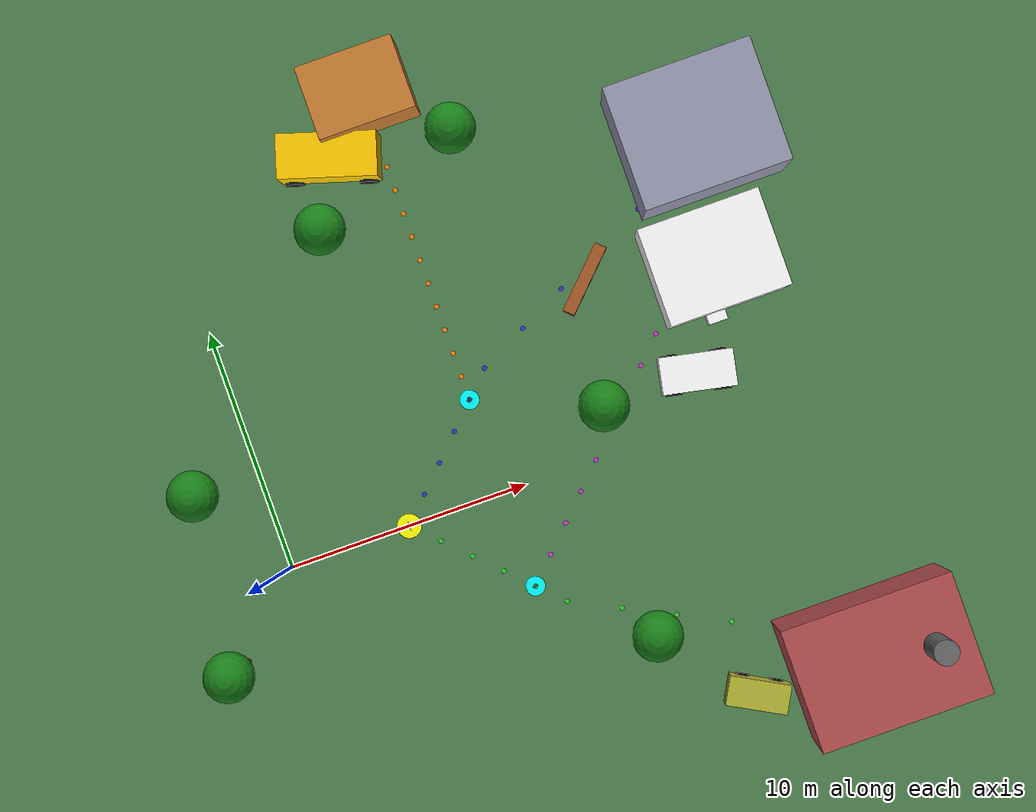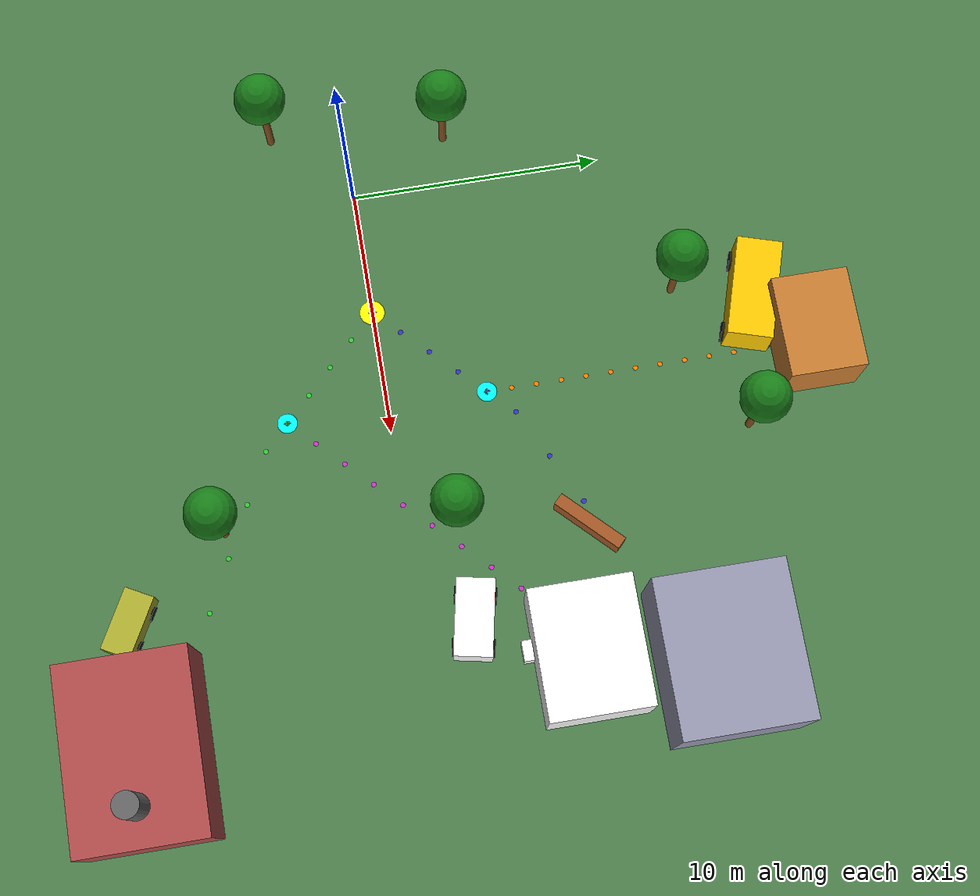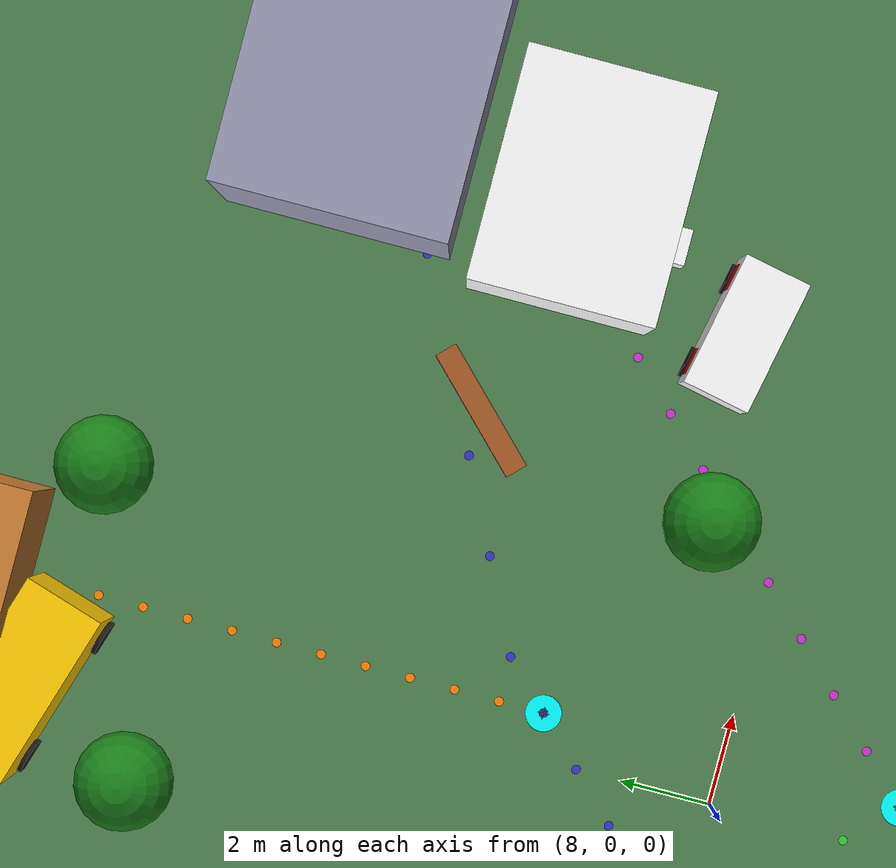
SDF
<sdf version="1.7">
 <world name="ethical_dilemma_world">
  <physics type="ode">
   <max_step_size>0.001</max_step_size>
   <real_time_factor>1.0</real_time_factor>
   <real_time_update_rate>1000</real_time_update_rate>
  </physics>
  <light type="directional" name="sun">
   <pose>0 0 10 0 0 0</pose>
   <diffuse>0.8 0.8 0.8 1</diffuse>
   <specular>0.2 0.2 0.2 1</specular>
   <direction>-0.5 0.1 -0.9</direction>
  </light>
  <light type="directional" name="ambient">
   <cast_shadows>false</cast_shadows>
   <pose>0 0 10 0 0 0</pose>
   <diffuse>0.3 0.3 0.3 1</diffuse>
   <specular>0.1 0.1 0.1 1</specular>
   <direction>0 0 -1</direction>
  </light>
  <scene><ambient>0.4 0.4 0.4 1</ambient><background>0.7 0.8 0.9 1</background><shadows>true</shadows></scene>
  <model name="ground_plane">
   <static>true</static>
   <link name="link">
    <collision name="collision">
     <geometry><plane><normal>0 0 1</normal><size>150 150</size></plane></geometry>
     <surface><friction><ode><mu>100</mu><mu2>50</mu2></ode></friction></surface>
    </collision>
    <visual name="visual">
     <geometry><plane><normal>0 0 1</normal><size>150 150</size></plane></geometry>
     <material>
      <ambient>0.3 0.5 0.3 1</ambient>
      <diffuse>0.3 0.5 0.3 1</diffuse>
      <specular>0 0 0 1</specular>
      <emissive>0 0 0 1</emissive>
     </material>
    </visual>
   </link>
  </model>
  <model name="path_marker_start">
   <static>true</static>
   <link name="link">
    <visual name="visual">
     <geometry><cylinder><radius>0.1</radius><length>0.001</length></cylinder></geometry>
     <material>
      <ambient>0.9 0.9 0.9 1</ambient>
      <diffuse>0.9 0.9 0.9 1</diffuse>
      <emissive>0.1 0.1 0.1 1</emissive>
     </material>
    </visual>
   </link>
   <pose>0 0 0.001 0 0 0</pose>
  </model>
  <model name="path_marker_1">
   <static>true</static>
   <link name="link">
    <visual name="visual">
     <geometry><cylinder><radius>0.1</radius><length>0.001</length></cylinder></geometry>
     <material>
      <ambient>0.9 0.9 0.9 1</ambient>
      <diffuse>0.9 0.9 0.9 1</diffuse>
      <emissive>0.1 0.1 0.1 1</emissive>
     </material>
    </visual>
   </link>
   <pose>1 0 0.001 0 0 0</pose>
  </model>
  <model name="path_marker_2">
   <static>true</static>
   <link name="link">
    <visual name="visual">
     <geometry><cylinder><radius>0.1</radius><length>0.001</length></cylinder></geometry>
     <material>
      <ambient>0.9 0.9 0.9 1</ambient>
      <diffuse>0.9 0.9 0.9 1</diffuse>
      <emissive>0.1 0.1 0.1 1</emissive>
     </material>
    </visual>
   </link>
   <pose>2 0 0.001 0 0 0</pose>
  </model>
  <model name="path_marker_3">
   <static>true</static>
   <link name="link">
    <visual name="visual">
     <geometry><cylinder><radius>0.1</radius><length>0.001</length></cylinder></geometry>
     <material>
      <ambient>0.9 0.9 0.9 1</ambient>
      <diffuse>0.9 0.9 0.9 1</diffuse>
      <emissive>0.1 0.1 0.1 1</emissive>
     </material>
    </visual>
   </link>
   <pose>3 0 0.001 0 0 0</pose>
  </model>
  <model name="path_marker_4">
   <static>true</static>
   <link name="link">
    <visual name="visual">
     <geometry><cylinder><radius>0.1</radius><length>0.001</length></cylinder></geometry>
     <material>
      <ambient>0.9 0.9 0.9 1</ambient>
      <diffuse>0.9 0.9 0.9 1</diffuse>
      <emissive>0.1 0.1 0.1 1</emissive>
     </material>
    </visual>
   </link>
   <pose>4 0 0.001 0 0 0</pose>
  </model>
  <model name="decision_point">
   <static>true</static>
   <link name="link">
    <collision name="collision">
     <geometry><cylinder><radius>0.5</radius><length>0.001</length></cylinder></geometry>
    </collision>
    <visual name="visual">
     <geometry><cylinder><radius>0.5</radius><length>0.001</length></cylinder></geometry>
     <material>
      <ambient>1.0 1.0 0.0 1</ambient>
      <diffuse>1.0 1.0 0.0 1</diffuse>
      <specular>0.1 0.1 0.1 1</specular>
      <emissive>0.3 0.3 0 1</emissive>
     </material>
    </visual>
    <visual name="symbol">
     <pose>0 0 0.0015 0 0 0</pose>
     <geometry><box><size>0.4 0.025 0.001</size></box></geometry>
     <material><ambient>0 0 0 1</ambient><diffuse>0 0 0 1</diffuse></material>
    </visual>
    <visual name="symbol_2">
     <pose>0 0 0.0015 0 0 1.5708</pose>
     <geometry><box><size>0.4 0.025 0.001</size></box></geometry>
     <material><ambient>0 0 0 1</ambient><diffuse>0 0 0 1</diffuse></material>
    </visual>
   </link>
   <pose>5.0 0 0.001 0 0 0</pose>
  </model>
  <model name="path_area1_marker_1">
   <static>true</static>
   <link name="link">
    <visual name="visual">
     <geometry><cylinder><radius>0.1</radius><length>0.001</length></cylinder></geometry>
     <material>
      <ambient>0.2 0.2 0.8 1</ambient>
      <diffuse>0.2 0.2 0.8 1</diffuse>
      <emissive>0.05 0.05 0.2 1</emissive>
     </material>
    </visual>
   </link>
   <pose>6.0 1.0 0.001 0 0 0</pose>
  </model>
  <model name="path_area1_marker_2">
   <static>true</static>
   <link name="link">
    <visual name="visual">
     <geometry><cylinder><radius>0.1</radius><length>0.001</length></cylinder></geometry>
     <material>
      <ambient>0.2 0.2 0.8 1</ambient>
      <diffuse>0.2 0.2 0.8 1</diffuse>
      <emissive>0.05 0.05 0.2 1</emissive>
     </material>
    </visual>
   </link>
   <pose>7.0 2.0 0.001 0 0 0</pose>
  </model>
  <model name="path_area1_marker_3">
   <static>true</static>
   <link name="link">
    <visual name="visual">
     <geometry><cylinder><radius>0.1</radius><length>0.001</length></cylinder></geometry>
     <material>
      <ambient>0.2 0.2 0.8 1</ambient>
      <diffuse>0.2 0.2 0.8 1</diffuse>
      <emissive>0.05 0.05 0.2 1</emissive>
     </material>
    </visual>
   </link>
   <pose>8.0 3.0 0.001 0 0 0</pose>
  </model>
  <model name="path_area1_marker_4">
   <static>true</static>
   <link name="link">
    <visual name="visual">
     <geometry><cylinder><radius>0.1</radius><length>0.001</length></cylinder></geometry>
     <material>
      <ambient>0.2 0.2 0.8 1</ambient>
      <diffuse>0.2 0.2 0.8 1</diffuse>
      <emissive>0.05 0.05 0.2 1</emissive>
     </material>
    </visual>
   </link>
   <pose>9.0 4.0 0.001 0 0 0</pose>
  </model>
  <model name="path_area1_marker_5">
   <static>true</static>
   <link name="link">
    <visual name="visual">
     <geometry><cylinder><radius>0.1</radius><length>0.001</length></cylinder></geometry>
     <material>
      <ambient>0.2 0.2 0.8 1</ambient>
      <diffuse>0.2 0.2 0.8 1</diffuse>
      <emissive>0.05 0.05 0.2 1</emissive>
     </material>
    </visual>
   </link>
   <pose>10.0 5.0 0.001 0 0 0</pose>
  </model>
  <model name="path_area1_marker_6">
   <static>true</static>
   <link name="link">
    <visual name="visual">
     <geometry><cylinder><radius>0.1</radius><length>0.001</length></cylinder></geometry>
     <material>
      <ambient>0.2 0.2 0.8 1</ambient>
      <diffuse>0.2 0.2 0.8 1</diffuse>
      <emissive>0.05 0.05 0.2 1</emissive>
     </material>
    </visual>
   </link>
   <pose>12.0 6.0 0.001 0 0 0</pose>
  </model>
  <model name="path_area1_marker_7">
   <static>true</static>
   <link name="link">
    <visual name="visual">
     <geometry><cylinder><radius>0.1</radius><length>0.001</length></cylinder></geometry>
     <material>
      <ambient>0.2 0.2 0.8 1</ambient>
      <diffuse>0.2 0.2 0.8 1</diffuse>
      <emissive>0.05 0.05 0.2 1</emissive>
     </material>
    </visual>
   </link>
   <pose>14.0 7.0 0.001 0 0 0</pose>
  </model>
  <model name="path_area1_marker_8">
   <static>true</static>
   <link name="link">
    <visual name="visual">
     <geometry><cylinder><radius>0.1</radius><length>0.001</length></cylinder></geometry>
     <material>
      <ambient>0.2 0.2 0.8 1</ambient>
      <diffuse>0.2 0.2 0.8 1</diffuse>
      <emissive>0.05 0.05 0.2 1</emissive>
     </material>
    </visual>
   </link>
   <pose>16.0 8.0 0.001 0 0 0</pose>
  </model>
  <model name="path_area1_marker_9">
   <static>true</static>
   <link name="link">
    <visual name="visual">
     <geometry><cylinder><radius>0.1</radius><length>0.001</length></cylinder></geometry>
     <material>
      <ambient>0.2 0.2 0.8 1</ambient>
      <diffuse>0.2 0.2 0.8 1</diffuse>
      <emissive>0.05 0.05 0.2 1</emissive>
     </material>
    </visual>
   </link>
   <pose>18.0 9.0 0.001 0 0 0</pose>
  </model>
  <model name="path_area2_marker_1">
   <static>true</static>
   <link name="link">
    <visual name="visual">
     <geometry><cylinder><radius>0.1</radius><length>0.001</length></cylinder></geometry>
     <material>
      <ambient>0.2 0.8 0.2 1</ambient>
      <diffuse>0.2 0.8 0.2 1</diffuse>
      <emissive>0.05 0.2 0.05 1</emissive>
     </material>
    </visual>
   </link>
   <pose>6.0 -1.0 0.001 0 0 0</pose>
  </model>
  <model name="path_area2_marker_2">
   <static>true</static>
   <link name="link">
    <visual name="visual">
     <geometry><cylinder><radius>0.1</radius><length>0.001</length></cylinder></geometry>
     <material>
      <ambient>0.2 0.8 0.2 1</ambient>
      <diffuse>0.2 0.8 0.2 1</diffuse>
      <emissive>0.05 0.2 0.05 1</emissive>
     </material>
    </visual>
   </link>
   <pose>7.0 -2.0 0.001 0 0 0</pose>
  </model>
  <model name="path_area2_marker_3">
   <static>true</static>
   <link name="link">
    <visual name="visual">
     <geometry><cylinder><radius>0.1</radius><length>0.001</length></cylinder></geometry>
     <material>
      <ambient>0.2 0.8 0.2 1</ambient>
      <diffuse>0.2 0.8 0.2 1</diffuse>
      <emissive>0.05 0.2 0.05 1</emissive>
     </material>
    </visual>
   </link>
   <pose>8.0 -3.0 0.001 0 0 0</pose>
  </model>
  <model name="path_area2_marker_4">
   <static>true</static>
   <link name="link">
    <visual name="visual">
     <geometry><cylinder><radius>0.1</radius><length>0.001</length></cylinder></geometry>
     <material>
      <ambient>0.2 0.8 0.2 1</ambient>
      <diffuse>0.2 0.8 0.2 1</diffuse>
      <emissive>0.05 0.2 0.05 1</emissive>
     </material>
    </visual>
   </link>
   <pose>9.0 -4.0 0.001 0 0 0</pose>
  </model>
  <model name="path_area2_marker_5">
   <static>true</static>
   <link name="link">
    <visual name="visual">
     <geometry><cylinder><radius>0.1</radius><length>0.001</length></cylinder></geometry>
     <material>
      <ambient>0.2 0.8 0.2 1</ambient>
      <diffuse>0.2 0.8 0.2 1</diffuse>
      <emissive>0.05 0.2 0.05 1</emissive>
     </material>
    </visual>
   </link>
   <pose>10.0 -5.0 0.001 0 0 0</pose>
  </model>
  <model name="path_area2_marker_6">
   <static>true</static>
   <link name="link">
    <visual name="visual">
     <geometry><cylinder><radius>0.1</radius><length>0.001</length></cylinder></geometry>
     <material>
      <ambient>0.2 0.8 0.2 1</ambient>
      <diffuse>0.2 0.8 0.2 1</diffuse>
      <emissive>0.05 0.2 0.05 1</emissive>
     </material>
    </visual>
   </link>
   <pose>12.0 -6.0 0.001 0 0 0</pose>
  </model>
  <model name="path_area2_marker_7">
   <static>true</static>
   <link name="link">
    <visual name="visual">
     <geometry><cylinder><radius>0.1</radius><length>0.001</length></cylinder></geometry>
     <material>
      <ambient>0.2 0.8 0.2 1</ambient>
      <diffuse>0.2 0.8 0.2 1</diffuse>
      <emissive>0.05 0.2 0.05 1</emissive>
     </material>
    </visual>
   </link>
   <pose>14.0 -7.0 0.001 0 0 0</pose>
  </model>
  <model name="path_area2_marker_8">
   <static>true</static>
   <link name="link">
    <visual name="visual">
     <geometry><cylinder><radius>0.1</radius><length>0.001</length></cylinder></geometry>
     <material>
      <ambient>0.2 0.8 0.2 1</ambient>
      <diffuse>0.2 0.8 0.2 1</diffuse>
      <emissive>0.05 0.2 0.05 1</emissive>
     </material>
    </visual>
   </link>
   <pose>16.0 -8.0 0.001 0 0 0</pose>
  </model>
  <model name="path_area2_marker_9">
   <static>true</static>
   <link name="link">
    <visual name="visual">
     <geometry><cylinder><radius>0.1</radius><length>0.001</length></cylinder></geometry>
     <material>
      <ambient>0.2 0.8 0.2 1</ambient>
      <diffuse>0.2 0.8 0.2 1</diffuse>
      <emissive>0.05 0.2 0.05 1</emissive>
     </material>
    </visual>
   </link>
   <pose>18.0 -9.0 0.001 0 0 0</pose>
  </model>
  <model name="secondary_decision_point_area1">
   <static>true</static>
   <link name="link">
    <collision name="collision">
     <geometry><cylinder><radius>0.4</radius><length>0.001</length></cylinder></geometry>
    </collision>
    <visual name="visual">
     <geometry><cylinder><radius>0.4</radius><length>0.001</length></cylinder></geometry>
     <material>
      <ambient>0.0 1.0 1.0 1</ambient>
      <diffuse>0.0 1.0 1.0 1</diffuse>
      <specular>0.1 0.1 0.1 1</specular>
      <emissive>0.0 0.3 0.3 1</emissive>
     </material>
    </visual>
    <visual name="symbol">
     <pose>0 0 0.0015 0 0 0</pose>
     <geometry><box><size>0.25 0.025 0.001</size></box></geometry>
     <material><ambient>0 0 0 1</ambient><diffuse>0 0 0 1</diffuse></material>
    </visual>
    <visual name="symbol_2">
     <pose>0 0 0.0015 0 0 1.5708</pose>
     <geometry><box><size>0.25 0.025 0.001</size></box></geometry>
     <material><ambient>0 0 0 1</ambient><diffuse>0 0 0 1</diffuse></material>
    </visual>
   </link>
   <pose>9.0 4.0 0.001 0 0 0</pose>
  </model>
  <model name="secondary_decision_point_area2">
   <static>true</static>
   <link name="link">
    <collision name="collision">
     <geometry><cylinder><radius>0.4</radius><length>0.001</length></cylinder></geometry>
    </collision>
    <visual name="visual">
     <geometry><cylinder><radius>0.4</radius><length>0.001</length></cylinder></geometry>
     <material>
      <ambient>0.0 1.0 1.0 1</ambient>
      <diffuse>0.0 1.0 1.0 1</diffuse>
      <specular>0.1 0.1 0.1 1</specular>
      <emissive>0.0 0.3 0.3 1</emissive>
     </material>
    </visual>
    <visual name="symbol">
     <pose>0 0 0.0015 0 0 0</pose>
     <geometry><box><size>0.25 0.025 0.001</size></box></geometry>
     <material><ambient>0 0 0 1</ambient><diffuse>0 0 0 1</diffuse></material>
    </visual>
    <visual name="symbol_2">
     <pose>0 0 0.0015 0 0 1.5708</pose>
     <geometry><box><size>0.25 0.025 0.001</size></box></geometry>
     <material><ambient>0 0 0 1</ambient><diffuse>0 0 0 1</diffuse></material>
    </visual>
   </link>
   <pose>9.0 -4.0 0.001 0 0 0</pose>
  </model>
  <model name="path_area3_marker_1">
   <static>true</static>
   <link name="link">
    <visual name="visual">
     <geometry><cylinder><radius>0.1</radius><length>0.001</length></cylinder></geometry>
     <material>
      <ambient>0.8 0.2 0.8 1</ambient>
      <diffuse>0.8 0.2 0.8 1</diffuse>
      <emissive>0.2 0.05 0.2 1</emissive>
     </material>
    </visual>
   </link>
   <pose>10.0 -3.0 0.001 0 0 0</pose>
  </model>
  <model name="path_area3_marker_2">
   <static>true</static>
   <link name="link">
    <visual name="visual">
     <geometry><cylinder><radius>0.1</radius><length>0.001</length></cylinder></geometry>
     <material>
      <ambient>0.8 0.2 0.8 1</ambient>
      <diffuse>0.8 0.2 0.8 1</diffuse>
      <emissive>0.2 0.05 0.2 1</emissive>
     </material>
    </visual>
   </link>
   <pose>11.0 -2.0 0.001 0 0 0</pose>
  </model>
  <model name="path_area3_marker_3">
   <static>true</static>
   <link name="link">
    <visual name="visual">
     <geometry><cylinder><radius>0.1</radius><length>0.001</length></cylinder></geometry>
     <material>
      <ambient>0.8 0.2 0.8 1</ambient>
      <diffuse>0.8 0.2 0.8 1</diffuse>
      <emissive>0.2 0.05 0.2 1</emissive>
     </material>
    </visual>
   </link>
   <pose>12.0 -1.0 0.001 0 0 0</pose>
  </model>
  <model name="path_area3_marker_4">
   <static>true</static>
   <link name="link">
    <visual name="visual">
     <geometry><cylinder><radius>0.1</radius><length>0.001</length></cylinder></geometry>
     <material>
      <ambient>0.8 0.2 0.8 1</ambient>
      <diffuse>0.8 0.2 0.8 1</diffuse>
      <emissive>0.2 0.05 0.2 1</emissive>
     </material>
    </visual>
   </link>
   <pose>13.0 0.0 0.001 0 0 0</pose>
  </model>
  <model name="path_area3_marker_5">
   <static>true</static>
   <link name="link">
    <visual name="visual">
     <geometry><cylinder><radius>0.1</radius><length>0.001</length></cylinder></geometry>
     <material>
      <ambient>0.8 0.2 0.8 1</ambient>
      <diffuse>0.8 0.2 0.8 1</diffuse>
      <emissive>0.2 0.05 0.2 1</emissive>
     </material>
    </visual>
   </link>
   <pose>14.0 1.0 0.001 0 0 0</pose>
  </model>
  <model name="path_area3_marker_6">
   <static>true</static>
   <link name="link">
    <visual name="visual">
     <geometry><cylinder><radius>0.1</radius><length>0.001</length></cylinder></geometry>
     <material>
      <ambient>0.8 0.2 0.8 1</ambient>
      <diffuse>0.8 0.2 0.8 1</diffuse>
      <emissive>0.2 0.05 0.2 1</emissive>
     </material>
    </visual>
   </link>
   <pose>15.0 2.0 0.001 0 0 0</pose>
  </model>
  <model name="path_area3_marker_7">
   <static>true</static>
   <link name="link">
    <visual name="visual">
     <geometry><cylinder><radius>0.1</radius><length>0.001</length></cylinder></geometry>
     <material>
      <ambient>0.8 0.2 0.8 1</ambient>
      <diffuse>0.8 0.2 0.8 1</diffuse>
      <emissive>0.2 0.05 0.2 1</emissive>
     </material>
    </visual>
   </link>
   <pose>16.0 3.0 0.001 0 0 0</pose>
  </model>
  <model name="path_area3_marker_8">
   <static>true</static>
   <link name="link">
    <visual name="visual">
     <geometry><cylinder><radius>0.1</radius><length>0.001</length></cylinder></geometry>
     <material>
      <ambient>0.8 0.2 0.8 1</ambient>
      <diffuse>0.8 0.2 0.8 1</diffuse>
      <emissive>0.2 0.05 0.2 1</emissive>
     </material>
    </visual>
   </link>
   <pose>17.0 4.0 0.001 0 0 0</pose>
  </model>
  <model name="path_area4_marker_1">
   <static>true</static>
   <link name="link">
    <visual name="visual">
     <geometry><cylinder><radius>0.1</radius><length>0.001</length></cylinder></geometry>
     <material>
      <ambient>1.0 0.5 0.0 1</ambient>
      <diffuse>1.0 0.5 0.0 1</diffuse>
      <emissive>0.2 0.1 0.0 1</emissive>
     </material>
    </visual>
   </link>
   <pose>9.0 5.0 0.001 0 0 0</pose>
  </model>
  <model name="path_area4_marker_2">
   <static>true</static>
   <link name="link">
    <visual name="visual">
     <geometry><cylinder><radius>0.1</radius><length>0.001</length></cylinder></geometry>
     <material>
      <ambient>1.0 0.5 0.0 1</ambient>
      <diffuse>1.0 0.5 0.0 1</diffuse>
      <emissive>0.2 0.1 0.0 1</emissive>
     </material>
    </visual>
   </link>
   <pose>9.0 6.0 0.001 0 0 0</pose>
  </model>
  <model name="path_area4_marker_3">
   <static>true</static>
   <link name="link">
    <visual name="visual">
     <geometry><cylinder><radius>0.1</radius><length>0.001</length></cylinder></geometry>
     <material>
      <ambient>1.0 0.5 0.0 1</ambient>
      <diffuse>1.0 0.5 0.0 1</diffuse>
      <emissive>0.2 0.1 0.0 1</emissive>
     </material>
    </visual>
   </link>
   <pose>9.0 7.0 0.001 0 0 0</pose>
  </model>
  <model name="path_area4_marker_4">
   <static>true</static>
   <link name="link">
    <visual name="visual">
     <geometry><cylinder><radius>0.1</radius><length>0.001</length></cylinder></geometry>
     <material>
      <ambient>1.0 0.5 0.0 1</ambient>
      <diffuse>1.0 0.5 0.0 1</diffuse>
      <emissive>0.2 0.1 0.0 1</emissive>
     </material>
    </visual>
   </link>
   <pose>9.0 8.0 0.001 0 0 0</pose>
  </model>
  <model name="path_area4_marker_5">
   <static>true</static>
   <link name="link">
    <visual name="visual">
     <geometry><cylinder><radius>0.1</radius><length>0.001</length></cylinder></geometry>
     <material>
      <ambient>1.0 0.5 0.0 1</ambient>
      <diffuse>1.0 0.5 0.0 1</diffuse>
      <emissive>0.2 0.1 0.0 1</emissive>
     </material>
    </visual>
   </link>
   <pose>9.0 9.0 0.001 0 0 0</pose>
  </model>
  <model name="path_area4_marker_6">
   <static>true</static>
   <link name="link">
    <visual name="visual">
     <geometry><cylinder><radius>0.1</radius><length>0.001</length></cylinder></geometry>
     <material>
      <ambient>1.0 0.5 0.0 1</ambient>
      <diffuse>1.0 0.5 0.0 1</diffuse>
      <emissive>0.2 0.1 0.0 1</emissive>
     </material>
    </visual>
   </link>
   <pose>9.0 10.0 0.001 0 0 0</pose>
  </model>
  <model name="path_area4_marker_7">
   <static>true</static>
   <link name="link">
    <visual name="visual">
     <geometry><cylinder><radius>0.1</radius><length>0.001</length></cylinder></geometry>
     <material>
      <ambient>1.0 0.5 0.0 1</ambient>
      <diffuse>1.0 0.5 0.0 1</diffuse>
      <emissive>0.2 0.1 0.0 1</emissive>
     </material>
    </visual>
   </link>
   <pose>9.0 11.0 0.001 0 0 0</pose>
  </model>
  <model name="path_area4_marker_8">
   <static>true</static>
   <link name="link">
    <visual name="visual">
     <geometry><cylinder><radius>0.1</radius><length>0.001</length></cylinder></geometry>
     <material>
      <ambient>1.0 0.5 0.0 1</ambient>
      <diffuse>1.0 0.5 0.0 1</diffuse>
      <emissive>0.2 0.1 0.0 1</emissive>
     </material>
    </visual>
   </link>
   <pose>9.0 12.0 0.001 0 0 0</pose>
  </model>
  <model name="path_area4_marker_9">
   <static>true</static>
   <link name="link">
    <visual name="visual">
     <geometry><cylinder><radius>0.1</radius><length>0.001</length></cylinder></geometry>
     <material>
      <ambient>1.0 0.5 0.0 1</ambient>
      <diffuse>1.0 0.5 0.0 1</diffuse>
      <emissive>0.2 0.1 0.0 1</emissive>
     </material>
    </visual>
   </link>
   <pose>9.0 13.0 0.001 0 0 0</pose>
  </model>
  <model name="path_area4_marker_10">
   <static>true</static>
   <link name="link">
    <visual name="visual">
     <geometry><cylinder><radius>0.1</radius><length>0.001</length></cylinder></geometry>
     <material>
      <ambient>1.0 0.5 0.0 1</ambient>
      <diffuse>1.0 0.5 0.0 1</diffuse>
      <emissive>0.2 0.1 0.0 1</emissive>
     </material>
    </visual>
   </link>
   <pose>9.0 14.0 0.001 0 0 0</pose>
  </model>
  <model name="medical_equipment">
   <static>true</static>
   <link name="link">
    <collision name="collision"><geometry><box><size>0.8 0.8 0.8</size></box></geometry></collision>
    <visual name="visual">
     <geometry><box><size>0.8 0.8 0.8</size></box></geometry>
     <material><ambient>1 1 1 1</ambient><diffuse>1 1 1 1</diffuse></material>
    </visual>
    <visual name="cross">
     <pose>0 0.401 0 0 0 0</pose>
     <geometry><box><size>0.6 0.01 0.6</size></box></geometry>
     <material><ambient>1 0 0 1</ambient><diffuse>1 0 0 1</diffuse></material>
    </visual>
   </link>
   <pose>19.5 4.0 0.4 0 0 0</pose>
  </model>
  <model name="area1_obstacle">
   <static>true</static>
   <link name="link">
    <collision name="collision"><geometry><box><size>3.0 0.5 1.0</size></box></geometry></collision>
    <visual name="visual">
     <geometry><box><size>3.0 0.5 1.0</size></box></geometry>
     <material>
      <ambient>0.65 0.35 0.15 1</ambient>
      <diffuse>0.65 0.35 0.15 1</diffuse>
      <specular>0.1 0.1 0.1 1</specular>
     </material>
    </visual>
   </link>
   <pose>15.0 7.0 0.5 0 0 0.785398</pose>
  </model>
  <model name="school_building">
   <static>true</static>
   <link name="link">
    <collision name="collision"><geometry><box><size>4.0 3.0 2.5</size></box></geometry></collision>
    <visual name="visual">
     <geometry><box><size>4.0 3.0 2.5</size></box></geometry>
     <material><ambient>0.8 0.5 0.2 1</ambient><diffuse>0.8 0.5 0.2 1</diffuse></material>
    </visual>
    <visual name="sign">
     <pose>0 1.501 0.5 0 0 0</pose>
     <geometry><box><size>1.5 0.01 0.5</size></box></geometry>
     <material><ambient>0.2 0.6 1.0 1</ambient><diffuse>0.2 0.6 1.0 1</diffuse></material>
    </visual>
   </link>
   <pose>9.0 17.0 1.25 0 0 0</pose>
  </model>
  <model name="hospital_building">
   <static>true</static>
   <link name="link">
    <collision name="collision"><geometry><box><size>5.0 4.0 3.0</size></box></geometry></collision>
    <visual name="visual">
     <geometry><box><size>5.0 4.0 3.0</size></box></geometry>
     <material><ambient>1.0 1.0 1.0 1</ambient><diffuse>1.0 1.0 1.0 1</diffuse></material>
    </visual>
    <visual name="cross">
     <pose>0 2.001 0.5 0 0 0</pose>
     <geometry><box><size>1.5 0.01 1.5</size></box></geometry>
     <material><ambient>1.0 0.0 0.0 1</ambient><diffuse>1.0 0.0 0.0 1</diffuse></material>
    </visual>
   </link>
   <pose>20.0 6.0 1.5 0 0 0</pose>
  </model>
  <model name="residential_building">
   <static>true</static>
   <link name="link">
    <collision name="collision"><geometry><box><size>6.0 5.0 4.0</size></box></geometry></collision>
    <visual name="visual">
     <geometry><box><size>6.0 5.0 4.0</size></box></geometry>
     <material><ambient>0.6 0.6 0.7 1</ambient><diffuse>0.6 0.6 0.7 1</diffuse></material>
    </visual>
    <visual name="windows">
     <pose>0 2.501 0 0 0 0</pose>
     <geometry><box><size>5.0 0.01 3.0</size></box></geometry>
     <material><ambient>0.3 0.3 0.8 0.8</ambient><diffuse>0.3 0.3 0.8 0.8</diffuse></material>
    </visual>
   </link>
   <pose>21.0 11.0 2.0 0 0 0</pose>
  </model>
  <model name="factory_building">
   <static>true</static>
   <link name="link">
    <collision name="collision"><geometry><box><size>7.0 5.0 3.5</size></box></geometry></collision>
    <visual name="visual">
     <geometry><box><size>7.0 5.0 3.5</size></box></geometry>
     <material><ambient>0.7 0.3 0.3 1</ambient><diffuse>0.7 0.3 0.3 1</diffuse></material>
    </visual>
    <visual name="chimney">
     <pose>2.0 0 2.75 0 0 0</pose>
     <geometry><cylinder><radius>0.5</radius><length>2.0</length></cylinder></geometry>
     <material><ambient>0.4 0.4 0.4 1</ambient><diffuse>0.4 0.4 0.4 1</diffuse></material>
    </visual>
   </link>
   <pose>21.0 -11.0 1.75 0 0 0</pose>
  </model>
  <model name="hospital_vehicle">
   <static>true</static>
   <link name="link">
    <collision name="collision"><geometry><box><size>3.0 1.5 1.5</size></box></geometry></collision>
    <visual name="body">
     <geometry><box><size>3.0 1.5 1.5</size></box></geometry>
     <material><ambient>1.0 1.0 1.0 1</ambient><diffuse>1.0 1.0 1.0 1</diffuse></material>
    </visual>
    <visual name="cross1">
     <pose>-1.0 0.76 0 0 0 0</pose>
     <geometry><box><size>0.6 0.01 0.6</size></box></geometry>
     <material><ambient>1.0 0.0 0.0 1</ambient><diffuse>1.0 0.0 0.0 1</diffuse></material>
    </visual>
    <visual name="cross2">
     <pose>1.0 0.76 0 0 0 0</pose>
     <geometry><box><size>0.6 0.01 0.6</size></box></geometry>
     <material><ambient>1.0 0.0 0.0 1</ambient><diffuse>1.0 0.0 0.0 1</diffuse></material>
    </visual>
    <visual name="wheel1">
     <pose>-1.0 0.75 -0.65 1.57 0 0</pose>
     <geometry><cylinder><radius>0.35</radius><length>0.15</length></cylinder></geometry>
     <material><ambient>0.1 0.1 0.1 1</ambient><diffuse>0.1 0.1 0.1 1</diffuse></material>
    </visual>
    <visual name="wheel2">
     <pose>1.0 0.75 -0.65 1.57 0 0</pose>
     <geometry><cylinder><radius>0.35</radius><length>0.15</length></cylinder></geometry>
     <material><ambient>0.1 0.1 0.1 1</ambient><diffuse>0.1 0.1 0.1 1</diffuse></material>
    </visual>
    <visual name="wheel3">
     <pose>-1.0 -0.75 -0.65 1.57 0 0</pose>
     <geometry><cylinder><radius>0.35</radius><length>0.15</length></cylinder></geometry>
     <material><ambient>0.1 0.1 0.1 1</ambient><diffuse>0.1 0.1 0.1 1</diffuse></material>
    </visual>
    <visual name="wheel4">
     <pose>1.0 -0.75 -0.65 1.57 0 0</pose>
     <geometry><cylinder><radius>0.35</radius><length>0.15</length></cylinder></geometry>
     <material><ambient>0.1 0.1 0.1 1</ambient><diffuse>0.1 0.1 0.1 1</diffuse></material>
    </visual>
   </link>
   <pose>18.0 2.0 0.75 0 0 -0.2</pose>
  </model>
  <model name="school_bus">
   <static>true</static>
   <link name="link">
    <collision name="collision"><geometry><box><size>4.0 1.8 1.8</size></box></geometry></collision>
    <visual name="body">
     <geometry><box><size>4.0 1.8 1.8</size></box></geometry>
     <material><ambient>1.0 0.8 0.0 1</ambient><diffuse>1.0 0.8 0.0 1</diffuse></material>
    </visual>
    <visual name="windows">
     <pose>0 0 0.3 0 0 0</pose>
     <geometry><box><size>3.8 1.6 0.6</size></box></geometry>
     <material><ambient>0.1 0.3 0.5 0.6</ambient><diffuse>0.1 0.3 0.5 0.6</diffuse></material>
    </visual>
    <visual name="wheel1">
     <pose>-1.5 0.9 -0.7 1.57 0 0</pose>
     <geometry><cylinder><radius>0.4</radius><length>0.2</length></cylinder></geometry>
     <material><ambient>0.1 0.1 0.1 1</ambient><diffuse>0.1 0.1 0.1 1</diffuse></material>
    </visual>
    <visual name="wheel2">
     <pose>1.5 0.9 -0.7 1.57 0 0</pose>
     <geometry><cylinder><radius>0.4</radius><length>0.2</length></cylinder></geometry>
     <material><ambient>0.1 0.1 0.1 1</ambient><diffuse>0.1 0.1 0.1 1</diffuse></material>
    </visual>
    <visual name="wheel3">
     <pose>-1.5 -0.9 -0.7 1.57 0 0</pose>
     <geometry><cylinder><radius>0.4</radius><length>0.2</length></cylinder></geometry>
     <material><ambient>0.1 0.1 0.1 1</ambient><diffuse>0.1 0.1 0.1 1</diffuse></material>
    </visual>
    <visual name="wheel4">
     <pose>1.5 -0.9 -0.7 1.57 0 0</pose>
     <geometry><cylinder><radius>0.4</radius><length>0.2</length></cylinder></geometry>
     <material><ambient>0.1 0.1 0.1 1</ambient><diffuse>0.1 0.1 0.1 1</diffuse></material>
    </visual>
   </link>
   <pose>7.0 15.0 0.9 0 0 -0.3</pose>
  </model>
  <model name="factory_vehicle">
   <static>true</static>
   <link name="link">
    <collision name="collision"><geometry><box><size>2.5 1.2 1.0</size></box></geometry></collision>
    <visual name="body">
     <geometry><box><size>2.5 1.2 1.0</size></box></geometry>
     <material><ambient>0.7 0.7 0.2 1</ambient><diffuse>0.7 0.7 0.2 1</diffuse></material>
    </visual>
    <visual name="wheel1">
     <pose>-0.7 0.6 -0.4 1.57 0 0</pose>
     <geometry><cylinder><radius>0.3</radius><length>0.1</length></cylinder></geometry>
     <material><ambient>0.1 0.1 0.1 1</ambient><diffuse>0.1 0.1 0.1 1</diffuse></material>
    </visual>
    <visual name="wheel2">
     <pose>0.7 0.6 -0.4 1.57 0 0</pose>
     <geometry><cylinder><radius>0.3</radius><length>0.1</length></cylinder></geometry>
     <material><ambient>0.1 0.1 0.1 1</ambient><diffuse>0.1 0.1 0.1 1</diffuse></material>
    </visual>
    <visual name="wheel3">
     <pose>-0.7 -0.6 -0.4 1.57 0 0</pose>
     <geometry><cylinder><radius>0.3</radius><length>0.1</length></cylinder></geometry>
     <material><ambient>0.1 0.1 0.1 1</ambient><diffuse>0.1 0.1 0.1 1</diffuse></material>
    </visual>
    <visual name="wheel4">
     <pose>0.7 -0.6 -0.4 1.57 0 0</pose>
     <geometry><cylinder><radius>0.3</radius><length>0.1</length></cylinder></geometry>
     <material><ambient>0.1 0.1 0.1 1</ambient><diffuse>0.1 0.1 0.1 1</diffuse></material>
    </visual>
   </link>
   <pose>16.0 -11.0 0.5 0 0 -0.5</pose>
  </model>
  <model name="tree1">
   <static>true</static>
   <link name="link">
    <collision name="collision_trunk">
     <pose>0 0 1.5 0 0 0</pose>
     <geometry><cylinder><radius>0.15</radius><length>3.0</length></cylinder></geometry>
    </collision>
    <visual name="trunk">
     <pose>0 0 1.5 0 0 0</pose>
     <geometry><cylinder><radius>0.15</radius><length>3.0</length></cylinder></geometry>
     <material><ambient>0.5 0.3 0.1 1</ambient><diffuse>0.5 0.3 0.1 1</diffuse></material>
    </visual>
    <collision name="collision_foliage">
     <pose>0 0 4 0 0 0</pose>
     <geometry><sphere><radius>1.0</radius></sphere></geometry>
    </collision>
    <visual name="foliage">
     <pose>0 0 4 0 0 0</pose>
     <geometry><sphere><radius>1.0</radius></sphere></geometry>
     <material><ambient>0.1 0.5 0.1 1</ambient><diffuse>0.1 0.5 0.1 1</diffuse></material>
    </visual>
   </link>
   <pose>-2 4 0 0 0 0</pose>
  </model>
  <model name="tree2">
   <static>true</static>
   <link name="link">
    <collision name="collision_trunk">
     <pose>0 0 1.5 0 0 0</pose>
     <geometry><cylinder><radius>0.15</radius><length>3.0</length></cylinder></geometry>
    </collision>
    <visual name="trunk">
     <pose>0 0 1.5 0 0 0</pose>
     <geometry><cylinder><radius>0.15</radius><length>3.0</length></cylinder></geometry>
     <material><ambient>0.5 0.3 0.1 1</ambient><diffuse>0.5 0.3 0.1 1</diffuse></material>
    </visual>
    <collision name="collision_foliage">
     <pose>0 0 4 0 0 0</pose>
     <geometry><sphere><radius>1.0</radius></sphere></geometry>
    </collision>
    <visual name="foliage">
     <pose>0 0 4 0 0 0</pose>
     <geometry><sphere><radius>1.0</radius></sphere></geometry>
     <material><ambient>0.1 0.5 0.1 1</ambient><diffuse>0.1 0.5 0.1 1</diffuse></material>
    </visual>
   </link>
   <pose>-3 -3 0 0 0 0</pose>
  </model>
  <model name="tree3">
   <static>true</static>
   <link name="link">
    <collision name="collision_trunk">
     <pose>0 0 1.5 0 0 0</pose>
     <geometry><cylinder><radius>0.15</radius><length>3.0</length></cylinder></geometry>
    </collision>
    <visual name="trunk">
     <pose>0 0 1.5 0 0 0</pose>
     <geometry><cylinder><radius>0.15</radius><length>3.0</length></cylinder></geometry>
     <material><ambient>0.5 0.3 0.1 1</ambient><diffuse>0.5 0.3 0.1 1</diffuse></material>
    </visual>
    <collision name="collision_foliage">
     <pose>0 0 4 0 0 0</pose>
     <geometry><sphere><radius>1.0</radius></sphere></geometry>
    </collision>
    <visual name="foliage">
     <pose>0 0 4 0 0 0</pose>
     <geometry><sphere><radius>1.0</radius></sphere></geometry>
     <material><ambient>0.1 0.5 0.1 1</ambient><diffuse>0.1 0.5 0.1 1</diffuse></material>
    </visual>
   </link>
   <pose>14 2 0 0 0 0</pose>
  </model>
  <model name="tree4">
   <static>true</static>
   <link name="link">
    <collision name="collision_trunk">
     <pose>0 0 1.5 0 0 0</pose>
     <geometry><cylinder><radius>0.15</radius><length>3.0</length></cylinder></geometry>
    </collision>
    <visual name="trunk">
     <pose>0 0 1.5 0 0 0</pose>
     <geometry><cylinder><radius>0.15</radius><length>3.0</length></cylinder></geometry>
     <material><ambient>0.5 0.3 0.1 1</ambient><diffuse>0.5 0.3 0.1 1</diffuse></material>
    </visual>
    <collision name="collision_foliage">
     <pose>0 0 4 0 0 0</pose>
     <geometry><sphere><radius>1.0</radius></sphere></geometry>
    </collision>
    <visual name="foliage">
     <pose>0 0 4 0 0 0</pose>
     <geometry><sphere><radius>1.0</radius></sphere></geometry>
     <material><ambient>0.1 0.5 0.1 1</ambient><diffuse>0.1 0.5 0.1 1</diffuse></material>
    </visual>
   </link>
   <pose>13 -7 0 0 0 0</pose>
  </model>
  <model name="tree5">
   <static>true</static>
   <link name="link">
    <collision name="collision_trunk">
     <pose>0 0 1.5 0 0 0</pose>
     <geometry><cylinder><radius>0.15</radius><length>3.0</length></cylinder></geometry>
    </collision>
    <visual name="trunk">
     <pose>0 0 1.5 0 0 0</pose>
     <geometry><cylinder><radius>0.15</radius><length>3.0</length></cylinder></geometry>
     <material><ambient>0.5 0.3 0.1 1</ambient><diffuse>0.5 0.3 0.1 1</diffuse></material>
    </visual>
    <collision name="collision_foliage">
     <pose>0 0 4 0 0 0</pose>
     <geometry><sphere><radius>1.0</radius></sphere></geometry>
    </collision>
    <visual name="foliage">
     <pose>0 0 4 0 0 0</pose>
     <geometry><sphere><radius>1.0</radius></sphere></geometry>
     <material><ambient>0.1 0.5 0.1 1</ambient><diffuse>0.1 0.5 0.1 1</diffuse></material>
    </visual>
   </link>
   <pose>6 12 0 0 0 0</pose>
  </model>
  <model name="tree6">
   <static>true</static>
   <link name="link">
    <collision name="collision_trunk">
     <pose>0 0 1.5 0 0 0</pose>
     <geometry><cylinder><radius>0.15</radius><length>3.0</length></cylinder></geometry>
    </collision>
    <visual name="trunk">
     <pose>0 0 1.5 0 0 0</pose>
     <geometry><cylinder><radius>0.15</radius><length>3.0</length></cylinder></geometry>
     <material><ambient>0.5 0.3 0.1 1</ambient><diffuse>0.5 0.3 0.1 1</diffuse></material>
    </visual>
    <collision name="collision_foliage">
     <pose>0 0 4 0 0 0</pose>
     <geometry><sphere><radius>1.0</radius></sphere></geometry>
    </collision>
    <visual name="foliage">
     <pose>0 0 4 0 0 0</pose>
     <geometry><sphere><radius>1.0</radius></sphere></geometry>
     <material><ambient>0.1 0.5 0.1 1</ambient><diffuse>0.1 0.5 0.1 1</diffuse></material>
    </visual>
   </link>
   <pose>12 14 0 0 0 0</pose>
  </model>
 </world>
</sdf>
